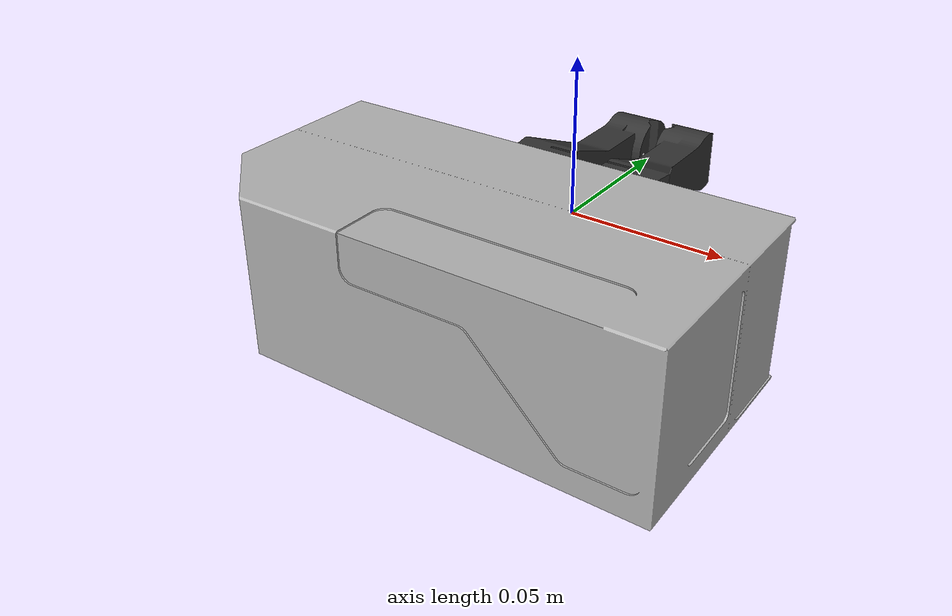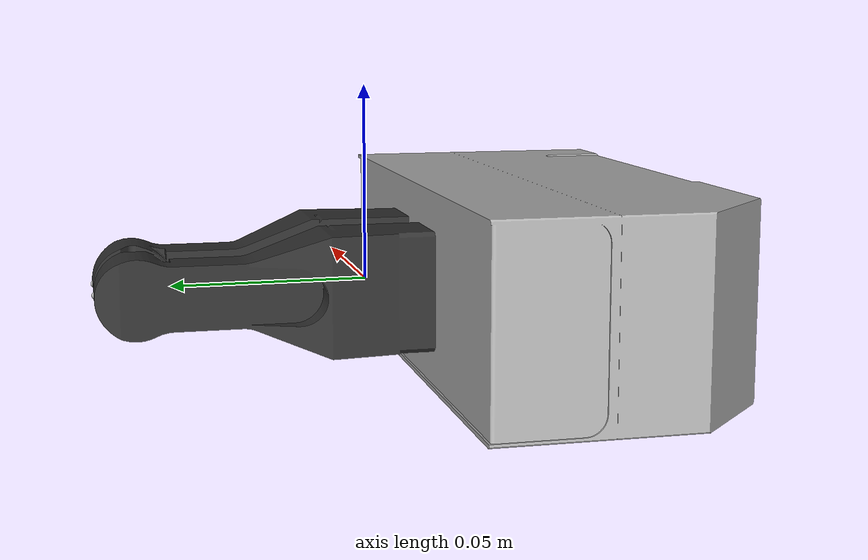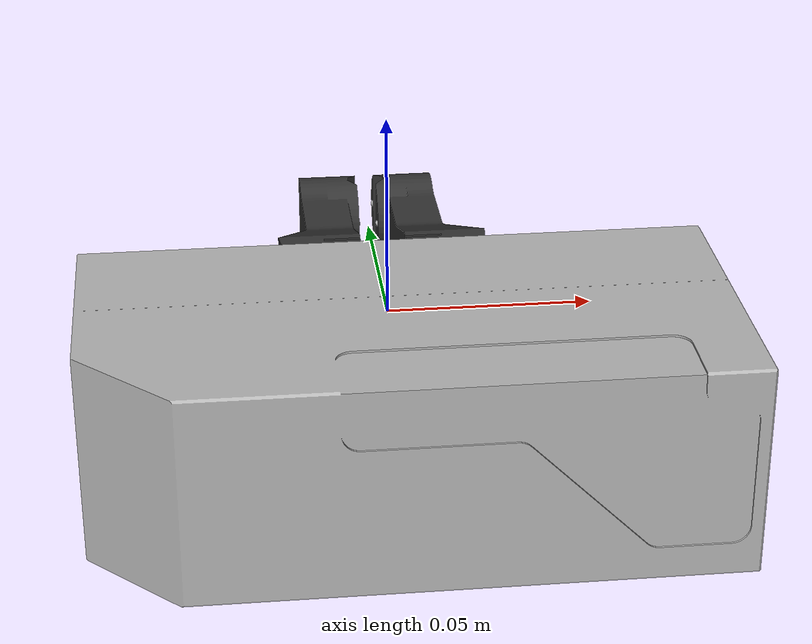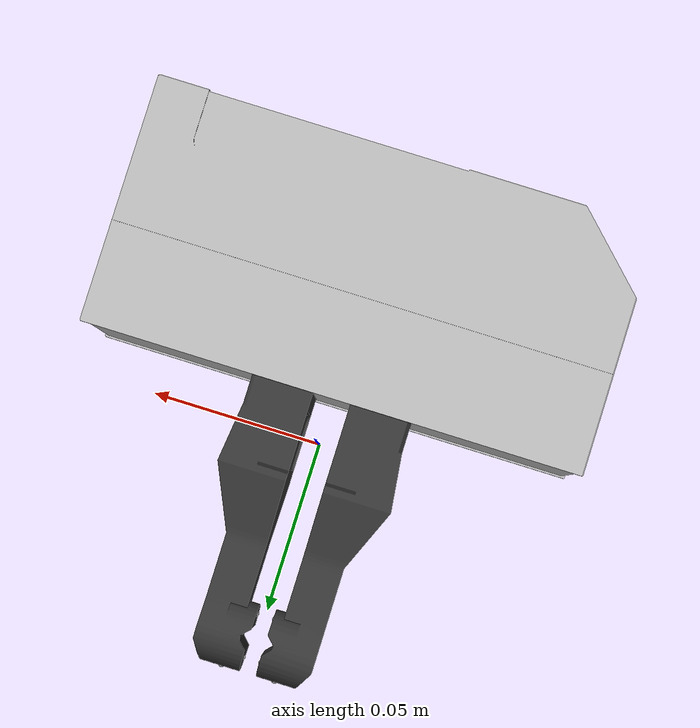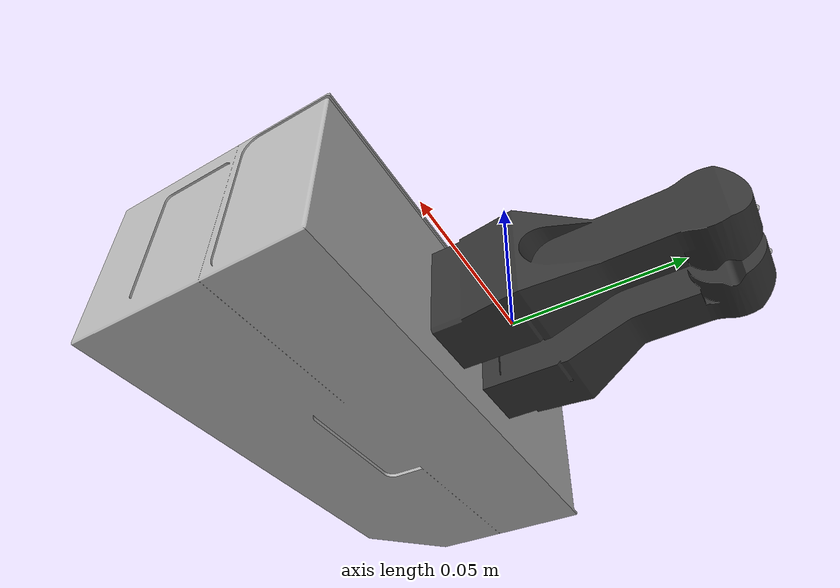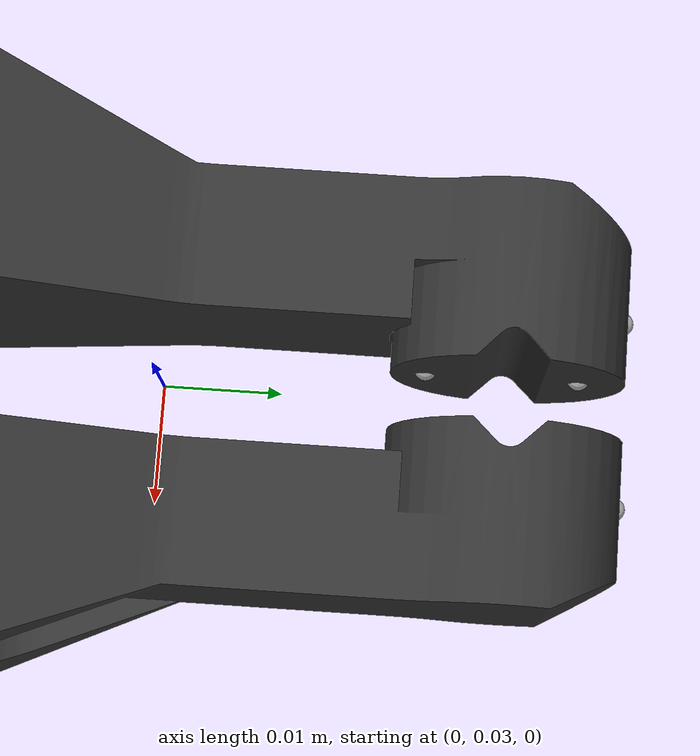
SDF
<!-- This sdf file is based on schunk_wsg_50.sdf -->
<?xml version="1.0"?>
<sdf version="1.7">
  <model name="Schunk_Gripper">
    <link name="body">
      <pose>0 -0.049133 0 0 0 0</pose>
      <inertial>
        <mass>0.988882</mass>
        <inertia>
          <ixx>0.162992</ixx>
          <ixy>0</ixy>
          <ixz>0</ixz>
          <iyy>0.162992</iyy>
          <iyz>0</iyz>
          <izz>0.164814</izz>
        </inertia>
      </inertial>
      <self_collide>0</self_collide>
      <kinematic>0</kinematic>
      <visual name="visual">
        <geometry>
          <mesh>
            <scale>1 1 1</scale>
            <uri>../meshes/wsg_body.obj</uri>
          </mesh>
        </geometry>
        <material>
          <diffuse>0.7 0.7 0.7 1</diffuse>
        </material>
      </visual>
      <collision name="collision">
        <laser_retro>0</laser_retro>
        <max_contacts>10</max_contacts>
        <geometry>
          <box>
            <size>0.146 0.0725 0.05</size>
          </box>
        </geometry>
        <surface>
          <friction>
            <ode>
              <mu>1</mu>
              <mu2>1</mu2>
              <fdir1>0 0 0</fdir1>
              <slip1>0</slip1>
              <slip2>0</slip2>
            </ode>
            <torsional>
              <coefficient>1</coefficient>
              <patch_radius>0</patch_radius>
              <surface_radius>0</surface_radius>
              <use_patch_radius>1</use_patch_radius>
              <ode>
                <slip>0</slip>
              </ode>
            </torsional>
          </friction>
          <bounce>
            <restitution_coefficient>0</restitution_coefficient>
            <threshold>1e+06</threshold>
          </bounce>
          <contact>
            <collide_without_contact>0</collide_without_contact>
            <collide_without_contact_bitmask>1</collide_without_contact_bitmask>
            <collide_bitmask>1</collide_bitmask>
            <ode>
              <soft_cfm>0</soft_cfm>
              <soft_erp>0.2</soft_erp>
              <kp>1e+13</kp>
              <kd>1</kd>
              <max_vel>0.01</max_vel>
              <min_depth>0</min_depth>
            </ode>
            <bullet>
              <split_impulse>1</split_impulse>
              <split_impulse_penetration_threshold>-0.01</split_impulse_penetration_threshold>
              <soft_cfm>0</soft_cfm>
              <soft_erp>0.2</soft_erp>
              <kp>1e+13</kp>
              <kd>1</kd>
            </bullet>
          </contact>
        </surface>
      </collision>
    </link>
    <frame name="body_frame">
      <pose relative_to="body"/>
    </frame>
    <link name="left_finger">
      <pose>-0.0115 0.028 0 0 3.141592 0</pose>
      <inertial>
        <mass>0.05</mass>
        <inertia>
          <ixx>0.16</ixx>
          <ixy>0</ixy>
          <ixz>0</ixz>
          <iyy>0.16</iyy>
          <iyz>0</iyz>
          <izz>0.16</izz>
        </inertia>
      </inertial>
      <self_collide>0</self_collide>
      <kinematic>0</kinematic>
      <visual name="visual">
        <geometry>
          <mesh>
            <scale>1 1 1</scale>
            <uri>../meshes/finger_with_tip.obj</uri>
          </mesh>
        </geometry>
        <material>
          <diffuse>0.2 0.2 0.2 1</diffuse>
        </material>
      </visual>
      <collision name="left_top">
	<pose> -0.008 0.021 0 0 0 0 </pose>
	<geometry>
	  <sphere>
            <radius> 0.001 </radius>
          </sphere>
        </geometry>
        <drake_compliance>
        <static_friction>3</static_friction>
        <dynamic_friction>3</dynamic_friction>
      </drake_compliance>
      </collision>
      <collision name="left_bottom">
	<pose> -0.008 0.041 0 0 0 0 </pose>
	<geometry>
	  <sphere>
            <radius> 0.001 </radius>
          </sphere>
        </geometry>
        <drake_compliance>
        <static_friction>3</static_friction>
        <dynamic_friction>3</dynamic_friction>
      </drake_compliance>
      </collision>
      <collision name="left_left">
	<pose> -0.008 0.031 -0.01 0 0 0 </pose>
	<geometry>
	  <sphere>
            <radius> 0.001 </radius>
          </sphere>
        </geometry>
      </collision>
      <collision name="left_right">
	<pose> -0.008 0.031 0.01 0 0 0 </pose>
	<geometry>
	  <sphere>
            <radius> 0.001 </radius>
          </sphere>
        </geometry>
        <drake_compliance>
        <static_friction>3</static_friction>
        <dynamic_friction>3</dynamic_friction>
      </drake_compliance>
      </collision>
      <collision name="collision">
        <laser_retro>0</laser_retro>
        <max_contacts>10</max_contacts>
        <geometry>
          <box>
            <size>0.012 0.082 0.02</size>
          </box>
        </geometry>
        <surface>
          <friction>
            <ode>
              <mu>1</mu>
              <mu2>1</mu2>
              <fdir1>0 0 0</fdir1>
              <slip1>0</slip1>
              <slip2>0</slip2>
            </ode>
            <torsional>
              <coefficient>1</coefficient>
              <patch_radius>0</patch_radius>
              <surface_radius>0</surface_radius>
              <use_patch_radius>1</use_patch_radius>
              <ode>
                <slip>0</slip>
              </ode>
            </torsional>
          </friction>
          <bounce>
            <restitution_coefficient>0</restitution_coefficient>
            <threshold>1e+06</threshold>
          </bounce>
          <contact>
            <collide_without_contact>0</collide_without_contact>
            <collide_without_contact_bitmask>1</collide_without_contact_bitmask>
            <collide_bitmask>1</collide_bitmask>
            <ode>
              <soft_cfm>0</soft_cfm>
              <soft_erp>0.2</soft_erp>
              <kp>1e+13</kp>
              <kd>1</kd>
              <max_vel>0.01</max_vel>
              <min_depth>0</min_depth>
            </ode>
            <bullet>
              <split_impulse>1</split_impulse>
              <split_impulse_penetration_threshold>-0.01</split_impulse_penetration_threshold>
              <soft_cfm>0</soft_cfm>
              <soft_erp>0.2</soft_erp>
              <kp>1e+13</kp>
              <kd>1</kd>
            </bullet>
          </contact>
        </surface>
      </collision>
    </link>
    <link name="right_finger">
      <pose>0.0115 0.028 0 0 0 0</pose>
      <inertial>
        <mass>0.05</mass>
        <inertia>
          <ixx>0.16</ixx>
          <ixy>0</ixy>
          <ixz>0</ixz>
          <iyy>0.16</iyy>
          <iyz>0</iyz>
          <izz>0.16</izz>
        </inertia>
      </inertial>
      <self_collide>0</self_collide>
      <kinematic>0</kinematic>
      <visual name="visual">
        <geometry>
          <mesh>
            <scale>1 1 1</scale>
            <uri>../meshes/finger_with_tip.obj</uri>
          </mesh>
        </geometry>
        <material>
          <diffuse>0.2 0.2 0.2 1</diffuse>
        </material>
      </visual>
      <collision name="right_top">
	<pose> -0.008 0.021 0 0 0 0 </pose>
	<geometry>
	  <sphere>
            <radius> 0.001 </radius>
          </sphere>
        </geometry>
        <drake_compliance>
        <static_friction>3</static_friction>
        <dynamic_friction>3</dynamic_friction>
      </drake_compliance>
      </collision>
      <collision name="right_bottom">
	<pose> -0.008 0.041 0 0 0 0 </pose>
	<geometry>
	  <sphere>
            <radius> 0.001 </radius>
          </sphere>
        </geometry>
        <drake_compliance>
        <static_friction>3</static_friction>
        <dynamic_friction>3</dynamic_friction>
      </drake_compliance>
      </collision>
      <collision name="right_left">
	<pose> -0.008 0.031 -0.01 0 0 0 </pose>
	<geometry>
	  <sphere>
            <radius> 0.001 </radius>
          </sphere>
        </geometry>
        <drake_compliance>
        <static_friction>3</static_friction>
        <dynamic_friction>3</dynamic_friction>
      </drake_compliance>
      </collision>
      <collision name="right_right">
	<pose> -0.008 0.031 0.01 0 0 0 </pose>
	<geometry>
	  <sphere>
            <radius> 0.001 </radius>
          </sphere>
        </geometry>
        <drake_compliance>
        <static_friction>3</static_friction>
        <dynamic_friction>3</dynamic_friction>
      </drake_compliance>
      </collision>
      <collision name="collision">
        <laser_retro>0</laser_retro>
        <max_contacts>10</max_contacts>
        <geometry>
          <box>
            <size>0.012 0.082 0.02</size>
          </box>
        </geometry>
        <surface>
          <friction>
            <ode>
              <mu>1</mu>
              <mu2>1</mu2>
              <fdir1>0 0 0</fdir1>
              <slip1>0</slip1>
              <slip2>0</slip2>
            </ode>
            <torsional>
              <coefficient>1</coefficient>
              <patch_radius>0</patch_radius>
              <surface_radius>0</surface_radius>
              <use_patch_radius>1</use_patch_radius>
              <ode>
                <slip>0</slip>
              </ode>
            </torsional>
          </friction>
          <bounce>
            <restitution_coefficient>0</restitution_coefficient>
            <threshold>1e+06</threshold>
          </bounce>
          <contact>
            <collide_without_contact>0</collide_without_contact>
            <collide_without_contact_bitmask>1</collide_without_contact_bitmask>
            <collide_bitmask>1</collide_bitmask>
            <ode>
              <soft_cfm>0</soft_cfm>
              <soft_erp>0.2</soft_erp>
              <kp>1e+13</kp>
              <kd>1</kd>
              <max_vel>0.01</max_vel>
              <min_depth>0</min_depth>
            </ode>
            <bullet>
              <split_impulse>1</split_impulse>
              <split_impulse_penetration_threshold>-0.01</split_impulse_penetration_threshold>
              <soft_cfm>0</soft_cfm>
              <soft_erp>0.2</soft_erp>
              <kp>1e+13</kp>
              <kd>1</kd>
            </bullet>
          </contact>
        </surface>
      </collision>
    </link>
    <link name="left_ball_contact1">
    <pose>-0.003 0.065 0 0 0 0</pose>
      <inertial>
        <mass>0.0</mass>
        <inertia>
          <ixx>0</ixx>
          <ixy>0</ixy>
          <ixz>0</ixz>
          <iyy>0</iyy>
          <iyz>0</iyz>
          <izz>0</izz>
        </inertia>
      </inertial>
      <visual name="visual">
        <geometry>
          <sphere>
            <radius>.001</radius>
          </sphere>
        </geometry>
      </visual>
    </link>
    <link name="left_ball_contact2">
    <pose>-0.003 0.052 0 0 0 0</pose>
      <inertial>
        <mass>0.0</mass>
        <inertia>
          <ixx>0</ixx>
          <ixy>0</ixy>
          <ixz>0</ixz>
          <iyy>0</iyy>
          <iyz>0</iyz>
          <izz>0</izz>
        </inertia>
      </inertial>
      <visual name="visual">
        <geometry>
          <sphere>
            <radius>.001</radius>
          </sphere>
        </geometry>
      </visual>
    </link>
    <link name="left_ball_contact3">
    <pose>-0.008 0.0685 0 0 0 0</pose>
      <inertial>
        <mass>0.0</mass>
        <inertia>
          <ixx>0</ixx>
          <ixy>0</ixy>
          <ixz>0</ixz>
          <iyy>0</iyy>
          <iyz>0</iyz>
          <izz>0</izz>
        </inertia>
      </inertial>
      <visual name="visual">
        <geometry>
          <sphere>
            <radius>.001</radius>
          </sphere>
        </geometry>
      </visual>
    </link>
    <link name="right_ball_contact1">
    <pose>0.003 0.065 0 0 0 0</pose>
      <inertial>
        <mass>0.0</mass>
        <inertia>
          <ixx>0</ixx>
          <ixy>0</ixy>
          <ixz>0</ixz>
          <iyy>0</iyy>
          <iyz>0</iyz>
          <izz>0</izz>
        </inertia>
      </inertial>
      <visual name="visual">
        <geometry>
          <sphere>
            <radius>.001</radius>
          </sphere>
        </geometry>
      </visual>
    </link>
    <link name="right_ball_contact2">
    <pose>0.003 0.052 0 0 0 0</pose>
      <inertial>
        <mass>0.0</mass>
        <inertia>
          <ixx>0</ixx>
          <ixy>0</ixy>
          <ixz>0</ixz>
          <iyy>0</iyy>
          <iyz>0</iyz>
          <izz>0</izz>
        </inertia>
      </inertial>
      <visual name="visual">
        <geometry>
          <sphere>
            <radius>.001</radius>
          </sphere>
        </geometry>
      </visual>
    </link>
    <link name="right_ball_contact3">
    <pose>0.008 0.0685 0 0 0 0</pose>
      <inertial>
        <mass>0.0</mass>
        <inertia>
          <ixx>0</ixx>
          <ixy>0</ixy>
          <ixz>0</ixz>
          <iyy>0</iyy>
          <iyz>0</iyz>
          <izz>0</izz>
        </inertia>
      </inertial>
      <visual name="visual">
        <geometry>
          <sphere>
            <radius>.001</radius>
          </sphere>
        </geometry>
      </visual>
    </link>
    <joint name="left_finger_sliding_joint" type="prismatic">
      <parent>body</parent>
      <child>left_finger</child>
      <axis>
        <xyz>-1 0 0</xyz>
        <!-- Drake attaches an actuator to all and only joints with a nonzero
             effort limit. -->
        <limit>
          <lower>-0.055</lower>
          <upper>0</upper>
          <effort>80</effort>
          <stiffness>15000</stiffness>
          <dissipation>50</dissipation>
        </limit>
        <dynamics>
          <spring_reference>0</spring_reference>
          <spring_stiffness>0</spring_stiffness>
          <damping>0</damping>
          <friction>0</friction>
        </dynamics>
      </axis>
      <physics>
        <ode>
          <limit>
            <cfm>0</cfm>
            <erp>0.2</erp>
          </limit>
          <suspension>
            <cfm>0</cfm>
            <erp>0.2</erp>
          </suspension>
        </ode>
      </physics>
    </joint>
    <joint name="right_finger_sliding_joint" type="prismatic">
      <parent>body</parent>
      <child>right_finger</child>
      <axis>
        <xyz>1 0 0</xyz>
        <!-- Drake attaches an actuator to all and only joints with a nonzero
             effort limit. -->
        <limit>
          <lower>0</lower>
          <upper>0.055</upper>
          <effort>80</effort>
          <stiffness>15000</stiffness>
          <dissipation>50</dissipation>
        </limit>
        <dynamics>
          <spring_reference>0</spring_reference>
          <spring_stiffness>0</spring_stiffness>
          <damping>0</damping>
          <friction>0</friction>
        </dynamics>
      </axis>
      <physics>
        <ode>
          <limit>
            <cfm>0</cfm>
            <erp>0.2</erp>
          </limit>
          <suspension>
            <cfm>0</cfm>
            <erp>0.2</erp>
          </suspension>
        </ode>
      </physics>
    </joint>
    <joint name="left_finger_contact_ball1" type="fixed">
      <parent>left_finger</parent>
      <child>left_ball_contact1</child>
      <axis>
          <xyz>0 1 0</xyz>
      </axis>
    </joint>
    <joint name="left_finger_contact_ball2" type="fixed">
      <parent>left_finger</parent>
      <child>left_ball_contact2</child>
      <axis>
          <xyz>0 1 0</xyz>
      </axis>
    </joint>
    <joint name="left_finger_contact_ball3" type="fixed">
      <parent>left_finger</parent>
      <child>left_ball_contact3</child>
      <axis>
          <xyz>0 1 0</xyz>
      </axis>
    </joint>
    <joint name="right_finger_contact_ball1" type="fixed">
      <parent>right_finger</parent>
      <child>right_ball_contact1</child>
      <axis>
          <xyz>0 1 0</xyz>
      </axis>
    </joint>
    <joint name="right_finger_contact_ball2" type="fixed">
      <parent>right_finger</parent>
      <child>right_ball_contact2</child>
      <axis>
          <xyz>0 1 0</xyz>
      </axis>
    </joint>
    <joint name="right_finger_contact_ball3" type="fixed">
      <parent>right_finger</parent>
      <child>right_ball_contact3</child>
      <axis>
          <xyz>0 1 0</xyz>
      </axis>
    </joint>
    <static>0</static>
    <allow_auto_disable>1</allow_auto_disable>
  </model>
</sdf>
